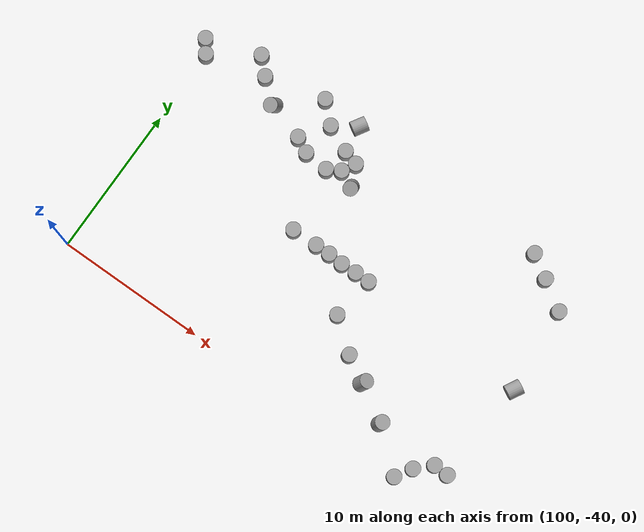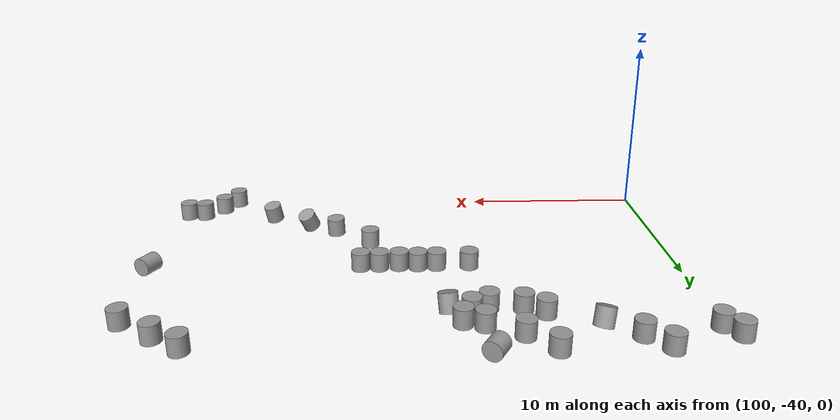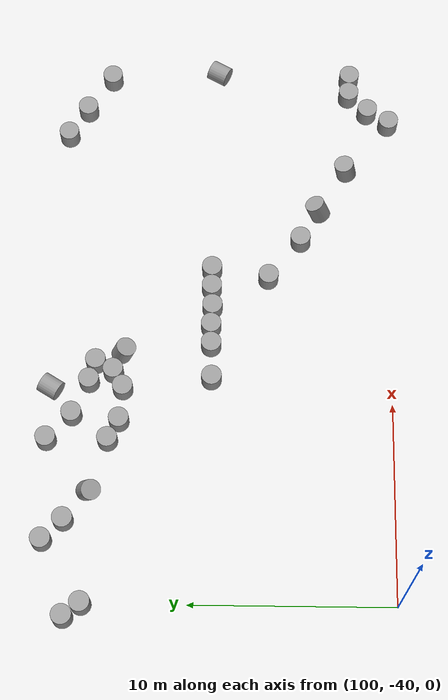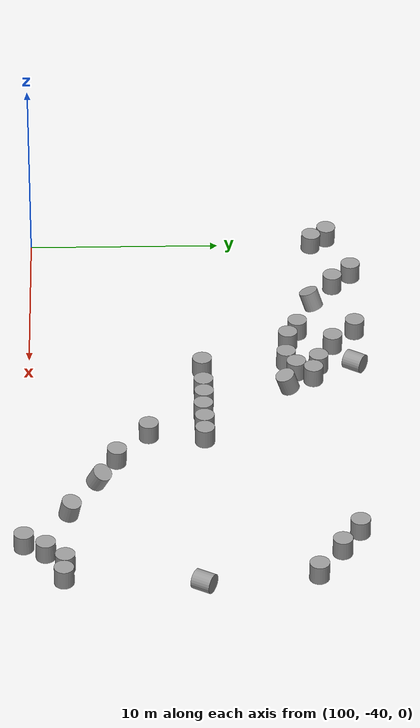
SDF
<sdf version="1.7">
 <world name="default">
  <model name="unit_cylinder_85_clone_244_clone_625">
   <pose>124.515 -23.469 0.451272 -9e-06 6e-06 0.000134</pose>
   <link name="link">
    <inertial>
     <mass>1</mass>
     <inertia><ixx>0.145833</ixx><ixy>0</ixy><ixz>0</ixz><iyy>0.145833</iyy><iyz>0</iyz><izz>0.125</izz></inertia>
    </inertial>
    <collision name="collision">
     <geometry><cylinder><radius>0.5</radius><length>1</length></cylinder></geometry>
    </collision>
    <visual name="visual">
     <geometry><cylinder><radius>0.5</radius><length>1</length></cylinder></geometry>
     <material>
      <script><name>Gazebo/Grey</name><uri>file://media/materials/scripts/gazebo.material</uri></script>
     </material>
    </visual>
   </link>
  </model>
  <model name="unit_cylinder_85_clone_244_clone_626">
   <pose>125.999 -24.4039 0.451271 -9e-06 9e-06 0.000541</pose>
   <link name="link">
    <inertial>
     <mass>1</mass>
     <inertia><ixx>0.145833</ixx><ixy>0</ixy><ixz>0</ixz><iyy>0.145833</iyy><iyz>0</iyz><izz>0.125</izz></inertia>
    </inertial>
    <collision name="collision">
     <geometry><cylinder><radius>0.5</radius><length>1</length></cylinder></geometry>
    </collision>
    <visual name="visual">
     <geometry><cylinder><radius>0.5</radius><length>1</length></cylinder></geometry>
     <material>
      <script><name>Gazebo/Grey</name><uri>file://media/materials/scripts/gazebo.material</uri></script>
     </material>
    </visual>
   </link>
  </model>
  <model name="unit_cylinder_85_clone_244_clone_632">
   <pose>127.857 -25.6281 0.451267 -5e-06 4e-06 0.000297</pose>
   <link name="link">
    <inertial>
     <mass>1</mass>
     <inertia><ixx>0.145833</ixx><ixy>0</ixy><ixz>0</ixz><iyy>0.145833</iyy><iyz>0</iyz><izz>0.125</izz></inertia>
    </inertial>
    <collision name="collision">
     <geometry><cylinder><radius>0.5</radius><length>1</length></cylinder></geometry>
    </collision>
    <visual name="visual">
     <geometry><cylinder><radius>0.5</radius><length>1</length></cylinder></geometry>
     <material>
      <script><name>Gazebo/Grey</name><uri>file://media/materials/scripts/gazebo.material</uri></script>
     </material>
    </visual>
   </link>
  </model>
  <model name="unit_cylinder_85_clone_244_clone_636">
   <pose>116.999 -30.9989 0.451248 -0.000103 -0.000161 0.003082</pose>
   <link name="link">
    <inertial>
     <mass>1</mass>
     <inertia><ixx>0.145833</ixx><ixy>0</ixy><ixz>0</ixz><iyy>0.145833</iyy><iyz>0</iyz><izz>0.125</izz></inertia>
    </inertial>
    <collision name="collision">
     <geometry><cylinder><radius>0.5</radius><length>1</length></cylinder></geometry>
    </collision>
    <visual name="visual">
     <geometry><cylinder><radius>0.5</radius><length>1</length></cylinder></geometry>
     <material>
      <script><name>Gazebo/Grey</name><uri>file://media/materials/scripts/gazebo.material</uri></script>
     </material>
    </visual>
   </link>
  </model>
  <model name="unit_cylinder_85_clone_244_clone_637">
   <pose>115.999 -30.9999 0.451098 -0.000116 -0.000159 0.003708</pose>
   <link name="link">
    <inertial>
     <mass>1</mass>
     <inertia><ixx>0.145833</ixx><ixy>0</ixy><ixz>0</ixz><iyy>0.145833</iyy><iyz>0</iyz><izz>0.125</izz></inertia>
    </inertial>
    <collision name="collision">
     <geometry><cylinder><radius>0.5</radius><length>1</length></cylinder></geometry>
    </collision>
    <visual name="visual">
     <geometry><cylinder><radius>0.5</radius><length>1</length></cylinder></geometry>
     <material>
      <script><name>Gazebo/Grey</name><uri>file://media/materials/scripts/gazebo.material</uri></script>
     </material>
    </visual>
   </link>
  </model>
  <model name="unit_cylinder_85_clone_244_clone_638">
   <pose>114.955 -31.0402 0.450931 -0.000117 -0.000157 -0.005202</pose>
   <link name="link">
    <inertial>
     <mass>1</mass>
     <inertia><ixx>0.145833</ixx><ixy>0</ixy><ixz>0</ixz><iyy>0.145833</iyy><iyz>0</iyz><izz>0.125</izz></inertia>
    </inertial>
    <collision name="collision">
     <geometry><cylinder><radius>0.5</radius><length>1</length></cylinder></geometry>
    </collision>
    <visual name="visual">
     <geometry><cylinder><radius>0.5</radius><length>1</length></cylinder></geometry>
     <material>
      <script><name>Gazebo/Grey</name><uri>file://media/materials/scripts/gazebo.material</uri></script>
     </material>
    </visual>
   </link>
  </model>
  <model name="unit_cylinder_85_clone_244_clone_639">
   <pose>113.95 -30.9878 0.450772 -0.000128 -0.000154 -0.000709</pose>
   <link name="link">
    <inertial>
     <mass>1</mass>
     <inertia><ixx>0.145833</ixx><ixy>0</ixy><ixz>0</ixz><iyy>0.145833</iyy><iyz>0</iyz><izz>0.125</izz></inertia>
    </inertial>
    <collision name="collision">
     <geometry><cylinder><radius>0.5</radius><length>1</length></cylinder></geometry>
    </collision>
    <visual name="visual">
     <geometry><cylinder><radius>0.5</radius><length>1</length></cylinder></geometry>
     <material>
      <script><name>Gazebo/Grey</name><uri>file://media/materials/scripts/gazebo.material</uri></script>
     </material>
    </visual>
   </link>
  </model>
  <model name="unit_cylinder_85_clone_244_clone_640">
   <pose>112.95 -31.0005 0.450616 -0.00013 -0.000152 0.00186</pose>
   <link name="link">
    <inertial>
     <mass>1</mass>
     <inertia><ixx>0.145833</ixx><ixy>0</ixy><ixz>0</ixz><iyy>0.145833</iyy><iyz>0</iyz><izz>0.125</izz></inertia>
    </inertial>
    <collision name="collision">
     <geometry><cylinder><radius>0.5</radius><length>1</length></cylinder></geometry>
    </collision>
    <visual name="visual">
     <geometry><cylinder><radius>0.5</radius><length>1</length></cylinder></geometry>
     <material>
      <script><name>Gazebo/Grey</name><uri>file://media/materials/scripts/gazebo.material</uri></script>
     </material>
    </visual>
   </link>
  </model>
  <model name="unit_cylinder_85_clone_244_clone_641">
   <pose>111.207 -31.0372 0.450312 3.5e-05 -0.000195 0.001096</pose>
   <link name="link">
    <inertial>
     <mass>1</mass>
     <inertia><ixx>0.145833</ixx><ixy>0</ixy><ixz>0</ixz><iyy>0.145833</iyy><iyz>0</iyz><izz>0.125</izz></inertia>
    </inertial>
    <collision name="collision">
     <geometry><cylinder><radius>0.5</radius><length>1</length></cylinder></geometry>
    </collision>
    <visual name="visual">
     <geometry><cylinder><radius>0.5</radius><length>1</length></cylinder></geometry>
     <material>
      <script><name>Gazebo/Grey</name><uri>file://media/materials/scripts/gazebo.material</uri></script>
     </material>
    </visual>
   </link>
  </model>
  <model name="unit_cylinder_85_clone_244_clone_642">
   <pose>112 -25.3014 0.450001 2e-06 -5e-06 0.004839</pose>
   <link name="link">
    <inertial>
     <mass>1</mass>
     <inertia><ixx>0.145833</ixx><ixy>0</ixy><ixz>0</ixz><iyy>0.145833</iyy><iyz>0</iyz><izz>0.125</izz></inertia>
    </inertial>
    <collision name="collision">
     <geometry><cylinder><radius>0.5</radius><length>1</length></cylinder></geometry>
    </collision>
    <visual name="visual">
     <geometry><cylinder><radius>0.5</radius><length>1</length></cylinder></geometry>
     <material>
      <script><name>Gazebo/Grey</name><uri>file://media/materials/scripts/gazebo.material</uri></script>
     </material>
    </visual>
   </link>
  </model>
  <model name="unit_cylinder_85_clone_244_clone_643">
   <pose>111 -25 0.449996 0 -0 0.000504</pose>
   <link name="link">
    <inertial>
     <mass>1</mass>
     <inertia><ixx>0.145833</ixx><ixy>0</ixy><ixz>0</ixz><iyy>0.145833</iyy><iyz>0</iyz><izz>0.125</izz></inertia>
    </inertial>
    <collision name="collision">
     <geometry><cylinder><radius>0.5</radius><length>1</length></cylinder></geometry>
    </collision>
    <visual name="visual">
     <geometry><cylinder><radius>0.5</radius><length>1</length></cylinder></geometry>
     <material>
      <script><name>Gazebo/Grey</name><uri>file://media/materials/scripts/gazebo.material</uri></script>
     </material>
    </visual>
   </link>
  </model>
  <model name="unit_cylinder_85_clone_244_clone_644">
   <pose>110.726 -23.1015 0.25 -1.5708 0.525415 -0.546461</pose>
   <link name="link">
    <inertial>
     <mass>1</mass>
     <inertia><ixx>0.145833</ixx><ixy>0</ixy><ixz>0</ixz><iyy>0.145833</iyy><iyz>0</iyz><izz>0.125</izz></inertia>
    </inertial>
    <collision name="collision">
     <geometry><cylinder><radius>0.5</radius><length>1</length></cylinder></geometry>
    </collision>
    <visual name="visual">
     <geometry><cylinder><radius>0.5</radius><length>1</length></cylinder></geometry>
     <material>
      <script><name>Gazebo/Grey</name><uri>file://media/materials/scripts/gazebo.material</uri></script>
     </material>
    </visual>
   </link>
  </model>
  <model name="unit_cylinder_85_clone_244_clone_645">
   <pose>109.274 -24.2044 0.44999 0 -0 0.03341</pose>
   <link name="link">
    <inertial>
     <mass>1</mass>
     <inertia><ixx>0.145833</ixx><ixy>0</ixy><ixz>0</ixz><iyy>0.145833</iyy><iyz>0</iyz><izz>0.125</izz></inertia>
    </inertial>
    <collision name="collision">
     <geometry><cylinder><radius>0.5</radius><length>1</length></cylinder></geometry>
    </collision>
    <visual name="visual">
     <geometry><cylinder><radius>0.5</radius><length>1</length></cylinder></geometry>
     <material>
      <script><name>Gazebo/Grey</name><uri>file://media/materials/scripts/gazebo.material</uri></script>
     </material>
    </visual>
   </link>
  </model>
  <model name="unit_cylinder_85_clone_244_clone_646">
   <pose>108 -22.9999 0.450008 1.2e-05 -9e-06 0.000844</pose>
   <link name="link">
    <inertial>
     <mass>1</mass>
     <inertia><ixx>0.145833</ixx><ixy>0</ixy><ixz>0</ixz><iyy>0.145833</iyy><iyz>0</iyz><izz>0.125</izz></inertia>
    </inertial>
    <collision name="collision">
     <geometry><cylinder><radius>0.5</radius><length>1</length></cylinder></geometry>
    </collision>
    <visual name="visual">
     <geometry><cylinder><radius>0.5</radius><length>1</length></cylinder></geometry>
     <material>
      <script><name>Gazebo/Grey</name><uri>file://media/materials/scripts/gazebo.material</uri></script>
     </material>
    </visual>
   </link>
  </model>
  <model name="unit_cylinder_85_clone_244_clone_654">
   <pose>103 -23 0.449999 3e-06 -1e-06 0.000501</pose>
   <link name="link">
    <inertial>
     <mass>1</mass>
     <inertia><ixx>0.145833</ixx><ixy>0</ixy><ixz>0</ixz><iyy>0.145833</iyy><iyz>0</iyz><izz>0.125</izz></inertia>
    </inertial>
    <collision name="collision">
     <geometry><cylinder><radius>0.5</radius><length>1</length></cylinder></geometry>
    </collision>
    <visual name="visual">
     <geometry><cylinder><radius>0.5</radius><length>1</length></cylinder></geometry>
     <material>
      <script><name>Gazebo/Grey</name><uri>file://media/materials/scripts/gazebo.material</uri></script>
     </material>
    </visual>
   </link>
  </model>
  <model name="unit_cylinder_85_clone_244_clone_655">
   <pose>104 -24 0.45 1e-06 -1e-06 0.000488</pose>
   <link name="link">
    <inertial>
     <mass>1</mass>
     <inertia><ixx>0.145833</ixx><ixy>0</ixy><ixz>0</ixz><iyy>0.145833</iyy><iyz>0</iyz><izz>0.125</izz></inertia>
    </inertial>
    <collision name="collision">
     <geometry><cylinder><radius>0.5</radius><length>1</length></cylinder></geometry>
    </collision>
    <visual name="visual">
     <geometry><cylinder><radius>0.5</radius><length>1</length></cylinder></geometry>
     <material>
      <script><name>Gazebo/Grey</name><uri>file://media/materials/scripts/gazebo.material</uri></script>
     </material>
    </visual>
   </link>
  </model>
  <model name="unit_cylinder_85_clone_244_clone_656">
   <pose>105.451 -25.1721 0.400052 0.339702 -0.175862 -0.046246</pose>
   <link name="link">
    <inertial>
     <mass>1</mass>
     <inertia><ixx>0.145833</ixx><ixy>0</ixy><ixz>0</ixz><iyy>0.145833</iyy><iyz>0</iyz><izz>0.125</izz></inertia>
    </inertial>
    <collision name="collision">
     <geometry><cylinder><radius>0.5</radius><length>1</length></cylinder></geometry>
    </collision>
    <visual name="visual">
     <geometry><cylinder><radius>0.5</radius><length>1</length></cylinder></geometry>
     <material>
      <script><name>Gazebo/Grey</name><uri>file://media/materials/scripts/gazebo.material</uri></script>
     </material>
    </visual>
   </link>
  </model>
  <model name="unit_cylinder_85_clone_244_clone_657">
   <pose>108 -26 0.449997 -3e-06 -6e-06 0.000486</pose>
   <link name="link">
    <inertial>
     <mass>1</mass>
     <inertia><ixx>0.145833</ixx><ixy>0</ixy><ixz>0</ixz><iyy>0.145833</iyy><iyz>0</iyz><izz>0.125</izz></inertia>
    </inertial>
    <collision name="collision">
     <geometry><cylinder><radius>0.5</radius><length>1</length></cylinder></geometry>
    </collision>
    <visual name="visual">
     <geometry><cylinder><radius>0.5</radius><length>1</length></cylinder></geometry>
     <material>
      <script><name>Gazebo/Grey</name><uri>file://media/materials/scripts/gazebo.material</uri></script>
     </material>
    </visual>
   </link>
  </model>
  <model name="unit_cylinder_85_clone_244_clone_658">
   <pose>109 -26.5273 0.449999 1e-06 -2e-06 0.000488</pose>
   <link name="link">
    <inertial>
     <mass>1</mass>
     <inertia><ixx>0.145833</ixx><ixy>0</ixy><ixz>0</ixz><iyy>0.145833</iyy><iyz>0</iyz><izz>0.125</izz></inertia>
    </inertial>
    <collision name="collision">
     <geometry><cylinder><radius>0.5</radius><length>1</length></cylinder></geometry>
    </collision>
    <visual name="visual">
     <geometry><cylinder><radius>0.5</radius><length>1</length></cylinder></geometry>
     <material>
      <script><name>Gazebo/Grey</name><uri>file://media/materials/scripts/gazebo.material</uri></script>
     </material>
    </visual>
   </link>
  </model>
  <model name="unit_cylinder_85_clone_244_clone_659">
   <pose>111.52 -26.179 0.45 -0 1e-06 -0.052614</pose>
   <link name="link">
    <inertial>
     <mass>1</mass>
     <inertia><ixx>0.145833</ixx><ixy>0</ixy><ixz>0</ixz><iyy>0.145833</iyy><iyz>0</iyz><izz>0.125</izz></inertia>
    </inertial>
    <collision name="collision">
     <geometry><cylinder><radius>0.5</radius><length>1</length></cylinder></geometry>
    </collision>
    <visual name="visual">
     <geometry><cylinder><radius>0.5</radius><length>1</length></cylinder></geometry>
     <material>
      <script><name>Gazebo/Grey</name><uri>file://media/materials/scripts/gazebo.material</uri></script>
     </material>
    </visual>
   </link>
  </model>
  <model name="unit_cylinder_85_clone_244_clone_660">
   <pose>112.596 -26.661 0.381945 0.316368 0.049856 0.125921</pose>
   <link name="link">
    <inertial>
     <mass>1</mass>
     <inertia><ixx>0.145833</ixx><ixy>0</ixy><ixz>0</ixz><iyy>0.145833</iyy><iyz>0</iyz><izz>0.125</izz></inertia>
    </inertial>
    <collision name="collision">
     <geometry><cylinder><radius>0.5</radius><length>1</length></cylinder></geometry>
    </collision>
    <visual name="visual">
     <geometry><cylinder><radius>0.5</radius><length>1</length></cylinder></geometry>
     <material>
      <script><name>Gazebo/Grey</name><uri>file://media/materials/scripts/gazebo.material</uri></script>
     </material>
    </visual>
   </link>
  </model>
  <model name="unit_cylinder_85_clone_244_clone_661">
   <pose>110.647 -26.6701 0.449998 -2e-06 4e-06 -0.02111</pose>
   <link name="link">
    <inertial>
     <mass>1</mass>
     <inertia><ixx>0.145833</ixx><ixy>0</ixy><ixz>0</ixz><iyy>0.145833</iyy><iyz>0</iyz><izz>0.125</izz></inertia>
    </inertial>
    <collision name="collision">
     <geometry><cylinder><radius>0.5</radius><length>1</length></cylinder></geometry>
    </collision>
    <visual name="visual">
     <geometry><cylinder><radius>0.5</radius><length>1</length></cylinder></geometry>
     <material>
      <script><name>Gazebo/Grey</name><uri>file://media/materials/scripts/gazebo.material</uri></script>
     </material>
    </visual>
   </link>
  </model>
  <model name="unit_cylinder_85_clone_244_clone_666">
   <pose>116.6 -33.8512 0.451307 -0.000436 0.000304 0.000476</pose>
   <link name="link">
    <inertial>
     <mass>1</mass>
     <inertia><ixx>0.145833</ixx><ixy>0</ixy><ixz>0</ixz><iyy>0.145833</iyy><iyz>0</iyz><izz>0.125</izz></inertia>
    </inertial>
    <collision name="collision">
     <geometry><cylinder><radius>0.5</radius><length>1</length></cylinder></geometry>
    </collision>
    <visual name="visual">
     <geometry><cylinder><radius>0.5</radius><length>1</length></cylinder></geometry>
     <material>
      <script><name>Gazebo/Grey</name><uri>file://media/materials/scripts/gazebo.material</uri></script>
     </material>
    </visual>
   </link>
  </model>
  <model name="unit_cylinder_85_clone_244_clone_667">
   <pose>118.663 -35.4865 0.45993 -0.043442 0.027304 -0.091296</pose>
   <link name="link">
    <inertial>
     <mass>1</mass>
     <inertia><ixx>0.145833</ixx><ixy>0</ixy><ixz>0</ixz><iyy>0.145833</iyy><iyz>0</iyz><izz>0.125</izz></inertia>
    </inertial>
    <collision name="collision">
     <geometry><cylinder><radius>0.5</radius><length>1</length></cylinder></geometry>
    </collision>
    <visual name="visual">
     <geometry><cylinder><radius>0.5</radius><length>1</length></cylinder></geometry>
     <material>
      <script><name>Gazebo/Grey</name><uri>file://media/materials/scripts/gazebo.material</uri></script>
     </material>
    </visual>
   </link>
  </model>
  <model name="unit_cylinder_85_clone_244_clone_668">
   <pose>120.367 -36.3772 0.427329 -0.299438 0.399212 0.247502</pose>
   <link name="link">
    <inertial>
     <mass>1</mass>
     <inertia><ixx>0.145833</ixx><ixy>0</ixy><ixz>0</ixz><iyy>0.145833</iyy><iyz>0</iyz><izz>0.125</izz></inertia>
    </inertial>
    <collision name="collision">
     <geometry><cylinder><radius>0.5</radius><length>1</length></cylinder></geometry>
    </collision>
    <visual name="visual">
     <geometry><cylinder><radius>0.5</radius><length>1</length></cylinder></geometry>
     <material>
      <script><name>Gazebo/Grey</name><uri>file://media/materials/scripts/gazebo.material</uri></script>
     </material>
    </visual>
   </link>
  </model>
  <model name="unit_cylinder_85_clone_244_clone_669">
   <pose>122.719 -37.8251 0.355652 -0.19811 0.141813 -0.038615</pose>
   <link name="link">
    <inertial>
     <mass>1</mass>
     <inertia><ixx>0.145833</ixx><ixy>0</ixy><ixz>0</ixz><iyy>0.145833</iyy><iyz>0</iyz><izz>0.125</izz></inertia>
    </inertial>
    <collision name="collision">
     <geometry><cylinder><radius>0.5</radius><length>1</length></cylinder></geometry>
    </collision>
    <visual name="visual">
     <geometry><cylinder><radius>0.5</radius><length>1</length></cylinder></geometry>
     <material>
      <script><name>Gazebo/Grey</name><uri>file://media/materials/scripts/gazebo.material</uri></script>
     </material>
    </visual>
   </link>
  </model>
  <model name="unit_cylinder_85_clone_244_clone_670">
   <pose>126.974 -38.0423 0.451273 1e-06 -1e-06 -0.227242</pose>
   <link name="link">
    <inertial>
     <mass>1</mass>
     <inertia><ixx>0.145833</ixx><ixy>0</ixy><ixz>0</ixz><iyy>0.145833</iyy><iyz>0</iyz><izz>0.125</izz></inertia>
    </inertial>
    <collision name="collision">
     <geometry><cylinder><radius>0.5</radius><length>1</length></cylinder></geometry>
    </collision>
    <visual name="visual">
     <geometry><cylinder><radius>0.5</radius><length>1</length></cylinder></geometry>
     <material>
      <script><name>Gazebo/Grey</name><uri>file://media/materials/scripts/gazebo.material</uri></script>
     </material>
    </visual>
   </link>
  </model>
  <model name="unit_cylinder_85_clone_244_clone_671">
   <pose>126.001 -39.0008 0.4512 0.001573 0.001805 0.000475</pose>
   <link name="link">
    <inertial>
     <mass>1</mass>
     <inertia><ixx>0.145833</ixx><ixy>0</ixy><ixz>0</ixz><iyy>0.145833</iyy><iyz>0</iyz><izz>0.125</izz></inertia>
    </inertial>
    <collision name="collision">
     <geometry><cylinder><radius>0.5</radius><length>1</length></cylinder></geometry>
    </collision>
    <visual name="visual">
     <geometry><cylinder><radius>0.5</radius><length>1</length></cylinder></geometry>
     <material>
      <script><name>Gazebo/Grey</name><uri>file://media/materials/scripts/gazebo.material</uri></script>
     </material>
    </visual>
   </link>
  </model>
  <model name="unit_cylinder_85_clone_244_clone_672">
   <pose>125.328 -40.0853 0.450866 0.00113 0.001304 0.000473</pose>
   <link name="link">
    <inertial>
     <mass>1</mass>
     <inertia><ixx>0.145833</ixx><ixy>0</ixy><ixz>0</ixz><iyy>0.145833</iyy><iyz>0</iyz><izz>0.125</izz></inertia>
    </inertial>
    <collision name="collision">
     <geometry><cylinder><radius>0.5</radius><length>1</length></cylinder></geometry>
    </collision>
    <visual name="visual">
     <geometry><cylinder><radius>0.5</radius><length>1</length></cylinder></geometry>
     <material>
      <script><name>Gazebo/Grey</name><uri>file://media/materials/scripts/gazebo.material</uri></script>
     </material>
    </visual>
   </link>
  </model>
  <model name="unit_cylinder_85_clone_244_clone_673">
   <pose>127.973 -38.0893 0.450001 -2e-06 -1e-06 0.145297</pose>
   <link name="link">
    <inertial>
     <mass>1</mass>
     <inertia><ixx>0.145833</ixx><ixy>0</ixy><ixz>0</ixz><iyy>0.145833</iyy><iyz>0</iyz><izz>0.125</izz></inertia>
    </inertial>
    <collision name="collision">
     <geometry><cylinder><radius>0.5</radius><length>1</length></cylinder></geometry>
    </collision>
    <visual name="visual">
     <geometry><cylinder><radius>0.5</radius><length>1</length></cylinder></geometry>
     <material>
      <script><name>Gazebo/Grey</name><uri>file://media/materials/scripts/gazebo.material</uri></script>
     </material>
    </visual>
   </link>
  </model>
  <model name="unit_cylinder_85_clone_244_clone_690">
   <pose>128.337 -31.2664 0.25 1.5708 1.38277 -0.498894</pose>
   <link name="link">
    <inertial>
     <mass>1</mass>
     <inertia><ixx>0.145833</ixx><ixy>0</ixy><ixz>0</ixz><iyy>0.145833</iyy><iyz>0</iyz><izz>0.125</izz></inertia>
    </inertial>
    <collision name="collision">
     <geometry><cylinder><radius>0.5</radius><length>1</length></cylinder></geometry>
    </collision>
    <visual name="visual">
     <geometry><cylinder><radius>0.5</radius><length>1</length></cylinder></geometry>
     <material>
      <script><name>Gazebo/Grey</name><uri>file://media/materials/scripts/gazebo.material</uri></script>
     </material>
    </visual>
   </link>
  </model>
  <model name="unit_cylinder_85_clone_244_clone_1077">
   <pose>99.3901 -24.153 0.272591 -0.018218 0.042533 -0.001186</pose>
   <link name="link">
    <inertial>
     <mass>1</mass>
     <inertia><ixx>0.145833</ixx><ixy>0</ixy><ixz>0</ixz><iyy>0.145833</iyy><iyz>0</iyz><izz>0.125</izz></inertia>
    </inertial>
    <collision name="collision">
     <geometry><cylinder><radius>0.5</radius><length>1</length></cylinder></geometry>
    </collision>
    <visual name="visual">
     <geometry><cylinder><radius>0.5</radius><length>1</length></cylinder></geometry>
     <material>
      <script><name>Gazebo/Grey</name><uri>file://media/materials/scripts/gazebo.material</uri></script>
     </material>
    </visual>
   </link>
  </model>
  <model name="unit_cylinder_85_clone_244_clone_1078">
   <pose>100.012 -24.9843 0.26877 -0.026531 0.0276 -0.004589</pose>
   <link name="link">
    <inertial>
     <mass>1</mass>
     <inertia><ixx>0.145833</ixx><ixy>0</ixy><ixz>0</ixz><iyy>0.145833</iyy><iyz>0</iyz><izz>0.125</izz></inertia>
    </inertial>
    <collision name="collision">
     <geometry><cylinder><radius>0.5</radius><length>1</length></cylinder></geometry>
    </collision>
    <visual name="visual">
     <geometry><cylinder><radius>0.5</radius><length>1</length></cylinder></geometry>
     <material>
      <script><name>Gazebo/Grey</name><uri>file://media/materials/scripts/gazebo.material</uri></script>
     </material>
    </visual>
   </link>
  </model>
 </world>
</sdf>
